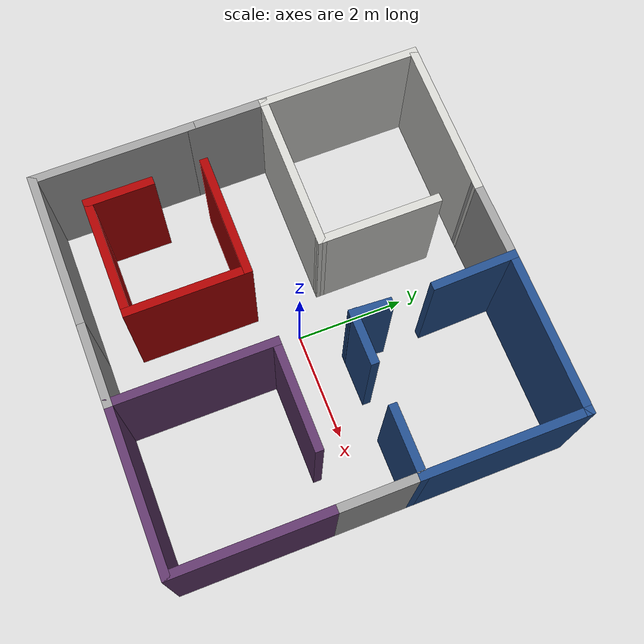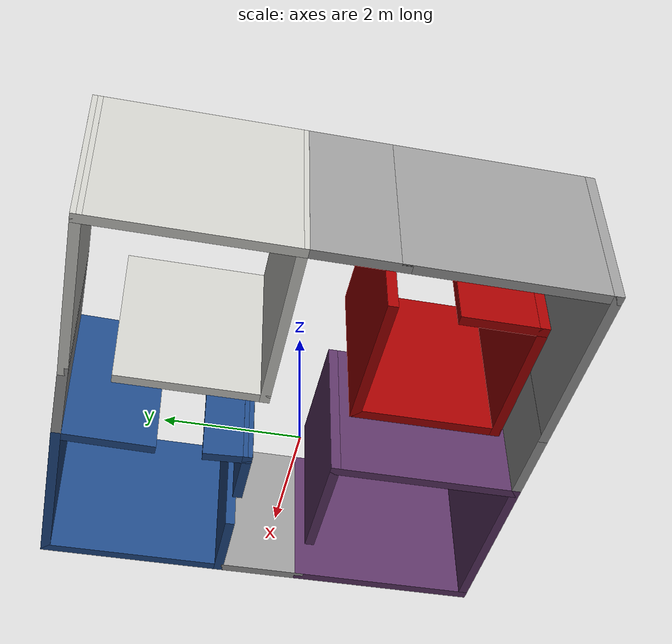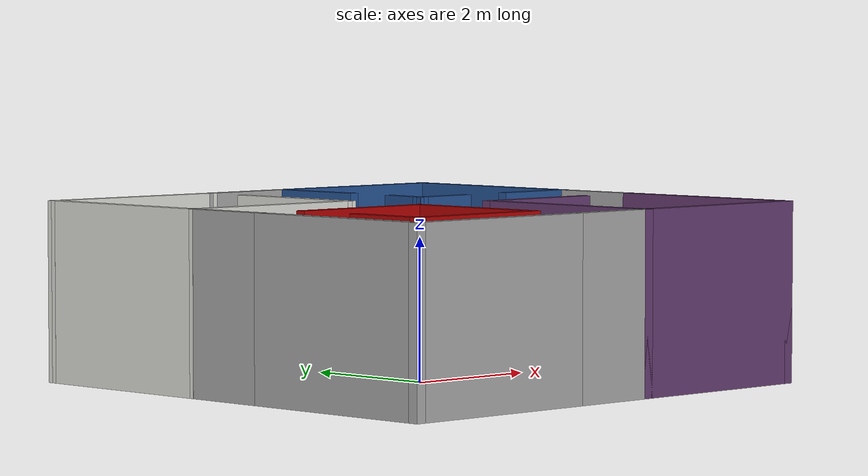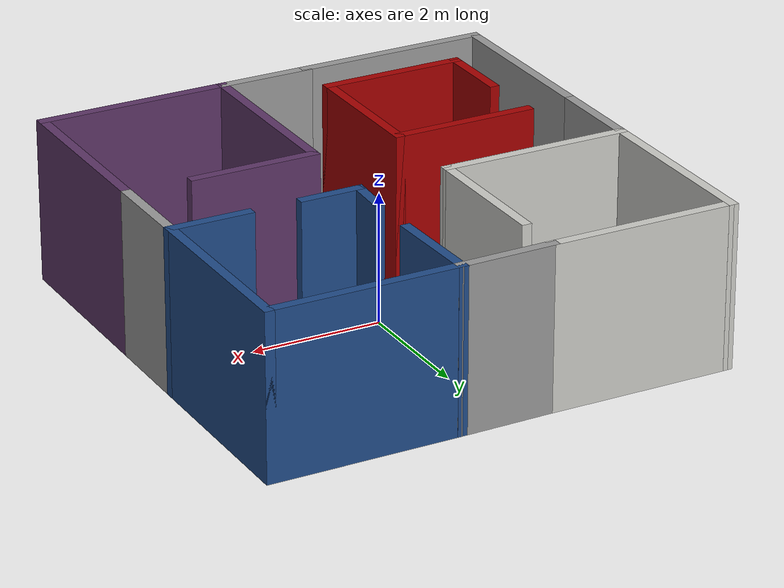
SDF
<?xml version='1.0'?>
<sdf version='1.7'>
  <model name='apartment'>
    <link name='Wall_20'>
      <pose>-3.52477 2.09918 0 0 0 -1.5708</pose>
      <self_collide>0</self_collide>
      <enable_wind>0</enable_wind>
      <kinematic>0</kinematic>
      <visual name='Wall_20_Visual'>
        <pose>0 0 1.25 0 -0 0</pose>
        <geometry>
          <box>
            <size>3 0.15 2.5</size>
          </box>
        </geometry>
        <material>
          <script>
            <uri>file://media/materials/scripts/gazebo.material</uri>
            <name>Gazebo/CeilingTiled</name>
          </script>
          <ambient>0.435294 0.796078 0.67451 1</ambient>
          <shader type='pixel'/>
        </material>
        <meta>
          <layer>0</layer>
        </meta>
        <transparency>0</transparency>
        <cast_shadows>1</cast_shadows>
      </visual>
      <collision name='Wall_20_Collision'>
        <laser_retro>0</laser_retro>
        <max_contacts>10</max_contacts>
        <pose>0 0 1.25 0 -0 0</pose>
        <geometry>
          <box>
            <size>3 0.15 2.5</size>
          </box>
        </geometry>
        <surface>
          <friction>
            <ode>
              <mu>1</mu>
              <mu2>1</mu2>
              <fdir1>0 0 0</fdir1>
              <slip1>0</slip1>
              <slip2>0</slip2>
            </ode>
            <torsional>
              <coefficient>1</coefficient>
              <patch_radius>0</patch_radius>
              <surface_radius>0</surface_radius>
              <use_patch_radius>1</use_patch_radius>
              <ode>
                <slip>0</slip>
              </ode>
            </torsional>
          </friction>
          <bounce>
            <restitution_coefficient>0</restitution_coefficient>
            <threshold>1e+06</threshold>
          </bounce>
          <contact>
            <collide_without_contact>0</collide_without_contact>
            <collide_without_contact_bitmask>1</collide_without_contact_bitmask>
            <collide_bitmask>1</collide_bitmask>
            <ode>
              <soft_cfm>0</soft_cfm>
              <soft_erp>0.2</soft_erp>
              <kp>1e+13</kp>
              <kd>1</kd>
              <max_vel>0.01</max_vel>
              <min_depth>0</min_depth>
            </ode>
            <bullet>
              <split_impulse>1</split_impulse>
              <split_impulse_penetration_threshold>-0.01</split_impulse_penetration_threshold>
              <soft_cfm>0</soft_cfm>
              <soft_erp>0.2</soft_erp>
              <kp>1e+13</kp>
              <kd>1</kd>
            </bullet>
          </contact>
        </surface>
      </collision>
    </link>
    <link name='Wall_21'>
      <pose>-2.126 0.665439 0 0 0 -0.006252</pose>
      <self_collide>0</self_collide>
      <enable_wind>0</enable_wind>
      <kinematic>0</kinematic>
      <visual name='Wall_21_Visual'>
        <pose>0 0 1.25 0 -0 0</pose>
        <geometry>
          <box>
            <size>2.94758 0.15 2.5</size>
          </box>
        </geometry>
        <material>
          <script>
            <uri>file://media/materials/scripts/gazebo.material</uri>
            <name>Gazebo/CeilingTiled</name>
          </script>
          <ambient>0.435294 0.796078 0.67451 1</ambient>
          <shader type='pixel'/>
        </material>
        <meta>
          <layer>0</layer>
        </meta>
        <transparency>0</transparency>
        <cast_shadows>1</cast_shadows>
      </visual>
      <collision name='Wall_21_Collision'>
        <laser_retro>0</laser_retro>
        <max_contacts>10</max_contacts>
        <pose>0 0 1.25 0 -0 0</pose>
        <geometry>
          <box>
            <size>2.94758 0.15 2.5</size>
          </box>
        </geometry>
        <surface>
          <friction>
            <ode>
              <mu>1</mu>
              <mu2>1</mu2>
              <fdir1>0 0 0</fdir1>
              <slip1>0</slip1>
              <slip2>0</slip2>
            </ode>
            <torsional>
              <coefficient>1</coefficient>
              <patch_radius>0</patch_radius>
              <surface_radius>0</surface_radius>
              <use_patch_radius>1</use_patch_radius>
              <ode>
                <slip>0</slip>
              </ode>
            </torsional>
          </friction>
          <bounce>
            <restitution_coefficient>0</restitution_coefficient>
            <threshold>1e+06</threshold>
          </bounce>
          <contact>
            <collide_without_contact>0</collide_without_contact>
            <collide_without_contact_bitmask>1</collide_without_contact_bitmask>
            <collide_bitmask>1</collide_bitmask>
            <ode>
              <soft_cfm>0</soft_cfm>
              <soft_erp>0.2</soft_erp>
              <kp>1e+13</kp>
              <kd>1</kd>
              <max_vel>0.01</max_vel>
              <min_depth>0</min_depth>
            </ode>
            <bullet>
              <split_impulse>1</split_impulse>
              <split_impulse_penetration_threshold>-0.01</split_impulse_penetration_threshold>
              <soft_cfm>0</soft_cfm>
              <soft_erp>0.2</soft_erp>
              <kp>1e+13</kp>
              <kd>1</kd>
            </bullet>
          </contact>
        </surface>
      </collision>
    </link>
    <link name='Wall_23'>
      <pose>-2.126 3.51544 0 0 -0 3.13534</pose>
      <self_collide>0</self_collide>
      <enable_wind>0</enable_wind>
      <kinematic>0</kinematic>
      <visual name='Wall_23_Visual'>
        <pose>0 0 1.25 0 -0 0</pose>
        <geometry>
          <box>
            <size>2.94758 0.15 2.5</size>
          </box>
        </geometry>
        <material>
          <script>
            <uri>file://media/materials/scripts/gazebo.material</uri>
            <name>Gazebo/CeilingTiled</name>
          </script>
          <ambient>0.435294 0.796078 0.67451 1</ambient>
          <shader type='pixel'/>
        </material>
        <meta>
          <layer>0</layer>
        </meta>
        <transparency>0</transparency>
        <cast_shadows>1</cast_shadows>
      </visual>
      <collision name='Wall_23_Collision'>
        <laser_retro>0</laser_retro>
        <max_contacts>10</max_contacts>
        <pose>0 0 1.25 0 -0 0</pose>
        <geometry>
          <box>
            <size>2.94758 0.15 2.5</size>
          </box>
        </geometry>
        <surface>
          <friction>
            <ode>
              <mu>1</mu>
              <mu2>1</mu2>
              <fdir1>0 0 0</fdir1>
              <slip1>0</slip1>
              <slip2>0</slip2>
            </ode>
            <torsional>
              <coefficient>1</coefficient>
              <patch_radius>0</patch_radius>
              <surface_radius>0</surface_radius>
              <use_patch_radius>1</use_patch_radius>
              <ode>
                <slip>0</slip>
              </ode>
            </torsional>
          </friction>
          <bounce>
            <restitution_coefficient>0</restitution_coefficient>
            <threshold>1e+06</threshold>
          </bounce>
          <contact>
            <collide_without_contact>0</collide_without_contact>
            <collide_without_contact_bitmask>1</collide_without_contact_bitmask>
            <collide_bitmask>1</collide_bitmask>
            <ode>
              <soft_cfm>0</soft_cfm>
              <soft_erp>0.2</soft_erp>
              <kp>1e+13</kp>
              <kd>1</kd>
              <max_vel>0.01</max_vel>
              <min_depth>0</min_depth>
            </ode>
            <bullet>
              <split_impulse>1</split_impulse>
              <split_impulse_penetration_threshold>-0.01</split_impulse_penetration_threshold>
              <soft_cfm>0</soft_cfm>
              <soft_erp>0.2</soft_erp>
              <kp>1e+13</kp>
              <kd>1</kd>
            </bullet>
          </contact>
        </surface>
      </collision>
    </link>
    <link name='Wall_25'>
      <pose>-3.52477 -0.000816 0 0 0 -1.5708</pose>
      <self_collide>0</self_collide>
      <enable_wind>0</enable_wind>
      <kinematic>0</kinematic>
      <visual name='Wall_25_Visual'>
        <pose>0 0 1.25 0 -0 0</pose>
        <geometry>
          <box>
            <size>1.5 0.15 2.5</size>
          </box>
        </geometry>
        <material>
          <script>
            <uri>file://media/materials/scripts/gazebo.material</uri>
            <name>Gazebo/Grey</name>
          </script>
          <ambient>0.729412 0.741176 0.713726 1</ambient>
          <shader type='pixel'/>
        </material>
        <meta>
          <layer>0</layer>
        </meta>
        <transparency>0</transparency>
        <cast_shadows>1</cast_shadows>
      </visual>
      <collision name='Wall_25_Collision'>
        <laser_retro>0</laser_retro>
        <max_contacts>10</max_contacts>
        <pose>0 0 1.25 0 -0 0</pose>
        <geometry>
          <box>
            <size>1.5 0.15 2.5</size>
          </box>
        </geometry>
        <surface>
          <friction>
            <ode>
              <mu>1</mu>
              <mu2>1</mu2>
              <fdir1>0 0 0</fdir1>
              <slip1>0</slip1>
              <slip2>0</slip2>
            </ode>
            <torsional>
              <coefficient>1</coefficient>
              <patch_radius>0</patch_radius>
              <surface_radius>0</surface_radius>
              <use_patch_radius>1</use_patch_radius>
              <ode>
                <slip>0</slip>
              </ode>
            </torsional>
          </friction>
          <bounce>
            <restitution_coefficient>0</restitution_coefficient>
            <threshold>1e+06</threshold>
          </bounce>
          <contact>
            <collide_without_contact>0</collide_without_contact>
            <collide_without_contact_bitmask>1</collide_without_contact_bitmask>
            <collide_bitmask>1</collide_bitmask>
            <ode>
              <soft_cfm>0</soft_cfm>
              <soft_erp>0.2</soft_erp>
              <kp>1e+13</kp>
              <kd>1</kd>
              <max_vel>0.01</max_vel>
              <min_depth>0</min_depth>
            </ode>
            <bullet>
              <split_impulse>1</split_impulse>
              <split_impulse_penetration_threshold>-0.01</split_impulse_penetration_threshold>
              <soft_cfm>0</soft_cfm>
              <soft_erp>0.2</soft_erp>
              <kp>1e+13</kp>
              <kd>1</kd>
            </bullet>
          </contact>
        </surface>
      </collision>
    </link>
    <link name='Wall_29'>
      <pose>-2.09977 -3.52582 0 0 -0 3.14159</pose>
      <self_collide>0</self_collide>
      <enable_wind>0</enable_wind>
      <kinematic>0</kinematic>
      <visual name='Wall_29_Visual'>
        <pose>0 0 1.25 0 -0 0</pose>
        <geometry>
          <box>
            <size>3 0.15 2.5</size>
          </box>
        </geometry>
        <material>
          <script>
            <uri>file://media/materials/scripts/gazebo.material</uri>
            <name>Gazebo/Grey</name>
          </script>
          <ambient>0.729412 0.741176 0.713726 1</ambient>
          <shader type='pixel'/>
        </material>
        <meta>
          <layer>0</layer>
        </meta>
        <transparency>0</transparency>
        <cast_shadows>1</cast_shadows>
      </visual>
      <collision name='Wall_29_Collision'>
        <laser_retro>0</laser_retro>
        <max_contacts>10</max_contacts>
        <pose>0 0 1.25 0 -0 0</pose>
        <geometry>
          <box>
            <size>3 0.15 2.5</size>
          </box>
        </geometry>
        <surface>
          <friction>
            <ode>
              <mu>1</mu>
              <mu2>1</mu2>
              <fdir1>0 0 0</fdir1>
              <slip1>0</slip1>
              <slip2>0</slip2>
            </ode>
            <torsional>
              <coefficient>1</coefficient>
              <patch_radius>0</patch_radius>
              <surface_radius>0</surface_radius>
              <use_patch_radius>1</use_patch_radius>
              <ode>
                <slip>0</slip>
              </ode>
            </torsional>
          </friction>
          <bounce>
            <restitution_coefficient>0</restitution_coefficient>
            <threshold>1e+06</threshold>
          </bounce>
          <contact>
            <collide_without_contact>0</collide_without_contact>
            <collide_without_contact_bitmask>1</collide_without_contact_bitmask>
            <collide_bitmask>1</collide_bitmask>
            <ode>
              <soft_cfm>0</soft_cfm>
              <soft_erp>0.2</soft_erp>
              <kp>1e+13</kp>
              <kd>1</kd>
              <max_vel>0.01</max_vel>
              <min_depth>0</min_depth>
            </ode>
            <bullet>
              <split_impulse>1</split_impulse>
              <split_impulse_penetration_threshold>-0.01</split_impulse_penetration_threshold>
              <soft_cfm>0</soft_cfm>
              <soft_erp>0.2</soft_erp>
              <kp>1e+13</kp>
              <kd>1</kd>
            </bullet>
          </contact>
        </surface>
      </collision>
    </link>
    <link name='Wall_30'>
      <pose>-3.52477 -2.10082 0 0 -0 1.5708</pose>
      <self_collide>0</self_collide>
      <enable_wind>0</enable_wind>
      <kinematic>0</kinematic>
      <visual name='Wall_30_Visual'>
        <pose>0 0 1.25 0 -0 0</pose>
        <geometry>
          <box>
            <size>3 0.15 2.5</size>
          </box>
        </geometry>
        <material>
          <script>
            <uri>file://media/materials/scripts/gazebo.material</uri>
            <name>Gazebo/Grey</name>
          </script>
          <ambient>0.729412 0.741176 0.713726 1</ambient>
          <shader type='pixel'/>
        </material>
        <meta>
          <layer>0</layer>
        </meta>
        <transparency>0</transparency>
        <cast_shadows>1</cast_shadows>
      </visual>
      <collision name='Wall_30_Collision'>
        <laser_retro>0</laser_retro>
        <max_contacts>10</max_contacts>
        <pose>0 0 1.25 0 -0 0</pose>
        <geometry>
          <box>
            <size>3 0.15 2.5</size>
          </box>
        </geometry>
        <surface>
          <friction>
            <ode>
              <mu>1</mu>
              <mu2>1</mu2>
              <fdir1>0 0 0</fdir1>
              <slip1>0</slip1>
              <slip2>0</slip2>
            </ode>
            <torsional>
              <coefficient>1</coefficient>
              <patch_radius>0</patch_radius>
              <surface_radius>0</surface_radius>
              <use_patch_radius>1</use_patch_radius>
              <ode>
                <slip>0</slip>
              </ode>
            </torsional>
          </friction>
          <bounce>
            <restitution_coefficient>0</restitution_coefficient>
            <threshold>1e+06</threshold>
          </bounce>
          <contact>
            <collide_without_contact>0</collide_without_contact>
            <collide_without_contact_bitmask>1</collide_without_contact_bitmask>
            <collide_bitmask>1</collide_bitmask>
            <ode>
              <soft_cfm>0</soft_cfm>
              <soft_erp>0.2</soft_erp>
              <kp>1e+13</kp>
              <kd>1</kd>
              <max_vel>0.01</max_vel>
              <min_depth>0</min_depth>
            </ode>
            <bullet>
              <split_impulse>1</split_impulse>
              <split_impulse_penetration_threshold>-0.01</split_impulse_penetration_threshold>
              <soft_cfm>0</soft_cfm>
              <soft_erp>0.2</soft_erp>
              <kp>1e+13</kp>
              <kd>1</kd>
            </bullet>
          </contact>
        </surface>
      </collision>
    </link>
    <link name='Wall_32'>
      <pose>-0.026002 3.51544 0 0 -0 0.01247</pose>
      <self_collide>0</self_collide>
      <enable_wind>0</enable_wind>
      <kinematic>0</kinematic>
      <visual name='Wall_32_Visual'>
        <pose>0 0 1.25 0 -0 0</pose>
        <geometry>
          <box>
            <size>1.55258 0.15 2.5</size>
          </box>
        </geometry>
        <material>
          <script>
            <uri>file://media/materials/scripts/gazebo.material</uri>
            <name>Gazebo/Grey</name>
          </script>
          <ambient>0.729412 0.741176 0.713726 1</ambient>
          <shader type='pixel'/>
        </material>
        <meta>
          <layer>0</layer>
        </meta>
        <transparency>0</transparency>
        <cast_shadows>1</cast_shadows>
      </visual>
      <collision name='Wall_32_Collision'>
        <laser_retro>0</laser_retro>
        <max_contacts>10</max_contacts>
        <pose>0 0 1.25 0 -0 0</pose>
        <geometry>
          <box>
            <size>1.55258 0.15 2.5</size>
          </box>
        </geometry>
        <surface>
          <friction>
            <ode>
              <mu>1</mu>
              <mu2>1</mu2>
              <fdir1>0 0 0</fdir1>
              <slip1>0</slip1>
              <slip2>0</slip2>
            </ode>
            <torsional>
              <coefficient>1</coefficient>
              <patch_radius>0</patch_radius>
              <surface_radius>0</surface_radius>
              <use_patch_radius>1</use_patch_radius>
              <ode>
                <slip>0</slip>
              </ode>
            </torsional>
          </friction>
          <bounce>
            <restitution_coefficient>0</restitution_coefficient>
            <threshold>1e+06</threshold>
          </bounce>
          <contact>
            <collide_without_contact>0</collide_without_contact>
            <collide_without_contact_bitmask>1</collide_without_contact_bitmask>
            <collide_bitmask>1</collide_bitmask>
            <ode>
              <soft_cfm>0</soft_cfm>
              <soft_erp>0.2</soft_erp>
              <kp>1e+13</kp>
              <kd>1</kd>
              <max_vel>0.01</max_vel>
              <min_depth>0</min_depth>
            </ode>
            <bullet>
              <split_impulse>1</split_impulse>
              <split_impulse_penetration_threshold>-0.01</split_impulse_penetration_threshold>
              <soft_cfm>0</soft_cfm>
              <soft_erp>0.2</soft_erp>
              <kp>1e+13</kp>
              <kd>1</kd>
            </bullet>
          </contact>
        </surface>
      </collision>
    </link>
    <link name='Wall_33'>
      <pose>2.10023 3.52418 0 0 -0 0</pose>
      <self_collide>0</self_collide>
      <enable_wind>0</enable_wind>
      <kinematic>0</kinematic>
      <visual name='Wall_33_Visual'>
        <pose>0 0 1.25 0 -0 0</pose>
        <geometry>
          <box>
            <size>3 0.15 2.5</size>
          </box>
        </geometry>
        <material>
          <script>
            <uri>file://media/materials/scripts/gazebo.material</uri>
            <name>Gazebo/Grey</name>
          </script>
          <ambient>0.12549 0.290196 0.529412 1</ambient>
          <shader type='pixel'/>
        </material>
        <meta>
          <layer>0</layer>
        </meta>
        <transparency>0</transparency>
        <cast_shadows>1</cast_shadows>
      </visual>
      <collision name='Wall_33_Collision'>
        <laser_retro>0</laser_retro>
        <max_contacts>10</max_contacts>
        <pose>0 0 1.25 0 -0 0</pose>
        <geometry>
          <box>
            <size>3 0.15 2.5</size>
          </box>
        </geometry>
        <surface>
          <friction>
            <ode>
              <mu>1</mu>
              <mu2>1</mu2>
              <fdir1>0 0 0</fdir1>
              <slip1>0</slip1>
              <slip2>0</slip2>
            </ode>
            <torsional>
              <coefficient>1</coefficient>
              <patch_radius>0</patch_radius>
              <surface_radius>0</surface_radius>
              <use_patch_radius>1</use_patch_radius>
              <ode>
                <slip>0</slip>
              </ode>
            </torsional>
          </friction>
          <bounce>
            <restitution_coefficient>0</restitution_coefficient>
            <threshold>1e+06</threshold>
          </bounce>
          <contact>
            <collide_without_contact>0</collide_without_contact>
            <collide_without_contact_bitmask>1</collide_without_contact_bitmask>
            <collide_bitmask>1</collide_bitmask>
            <ode>
              <soft_cfm>0</soft_cfm>
              <soft_erp>0.2</soft_erp>
              <kp>1e+13</kp>
              <kd>1</kd>
              <max_vel>0.01</max_vel>
              <min_depth>0</min_depth>
            </ode>
            <bullet>
              <split_impulse>1</split_impulse>
              <split_impulse_penetration_threshold>-0.01</split_impulse_penetration_threshold>
              <soft_cfm>0</soft_cfm>
              <soft_erp>0.2</soft_erp>
              <kp>1e+13</kp>
              <kd>1</kd>
            </bullet>
          </contact>
        </surface>
      </collision>
    </link>
    <link name='Wall_34'>
      <pose>3.52523 2.09918 0 0 0 -1.5708</pose>
      <self_collide>0</self_collide>
      <enable_wind>0</enable_wind>
      <kinematic>0</kinematic>
      <visual name='Wall_34_Visual'>
        <pose>0 0 1.25 0 -0 0</pose>
        <geometry>
          <box>
            <size>3 0.15 2.5</size>
          </box>
        </geometry>
        <material>
          <script>
            <uri>file://media/materials/scripts/gazebo.material</uri>
            <name>Gazebo/Grey</name>
          </script>
          <ambient>0.12549 0.290196 0.529412 1</ambient>
          <shader type='pixel'/>
        </material>
        <meta>
          <layer>0</layer>
        </meta>
        <transparency>0</transparency>
        <cast_shadows>1</cast_shadows>
      </visual>
      <collision name='Wall_34_Collision'>
        <laser_retro>0</laser_retro>
        <max_contacts>10</max_contacts>
        <pose>0 0 1.25 0 -0 0</pose>
        <geometry>
          <box>
            <size>3 0.15 2.5</size>
          </box>
        </geometry>
        <surface>
          <friction>
            <ode>
              <mu>1</mu>
              <mu2>1</mu2>
              <fdir1>0 0 0</fdir1>
              <slip1>0</slip1>
              <slip2>0</slip2>
            </ode>
            <torsional>
              <coefficient>1</coefficient>
              <patch_radius>0</patch_radius>
              <surface_radius>0</surface_radius>
              <use_patch_radius>1</use_patch_radius>
              <ode>
                <slip>0</slip>
              </ode>
            </torsional>
          </friction>
          <bounce>
            <restitution_coefficient>0</restitution_coefficient>
            <threshold>1e+06</threshold>
          </bounce>
          <contact>
            <collide_without_contact>0</collide_without_contact>
            <collide_without_contact_bitmask>1</collide_without_contact_bitmask>
            <collide_bitmask>1</collide_bitmask>
            <ode>
              <soft_cfm>0</soft_cfm>
              <soft_erp>0.2</soft_erp>
              <kp>1e+13</kp>
              <kd>1</kd>
              <max_vel>0.01</max_vel>
              <min_depth>0</min_depth>
            </ode>
            <bullet>
              <split_impulse>1</split_impulse>
              <split_impulse_penetration_threshold>-0.01</split_impulse_penetration_threshold>
              <soft_cfm>0</soft_cfm>
              <soft_erp>0.2</soft_erp>
              <kp>1e+13</kp>
              <kd>1</kd>
            </bullet>
          </contact>
        </surface>
      </collision>
    </link>
    <link name='Wall_38'>
      <pose>0.000234 -3.52582 0 0 -0 0</pose>
      <self_collide>0</self_collide>
      <enable_wind>0</enable_wind>
      <kinematic>0</kinematic>
      <visual name='Wall_38_Visual'>
        <pose>0 0 1.25 0 -0 0</pose>
        <geometry>
          <box>
            <size>1.5 0.15 2.5</size>
          </box>
        </geometry>
        <material>
          <script>
            <uri>file://media/materials/scripts/gazebo.material</uri>
            <name>Gazebo/Grey</name>
          </script>
          <ambient>0.729412 0.741176 0.713726 1</ambient>
          <shader type='pixel'/>
        </material>
        <meta>
          <layer>0</layer>
        </meta>
        <transparency>0</transparency>
        <cast_shadows>1</cast_shadows>
      </visual>
      <collision name='Wall_38_Collision'>
        <laser_retro>0</laser_retro>
        <max_contacts>10</max_contacts>
        <pose>0 0 1.25 0 -0 0</pose>
        <geometry>
          <box>
            <size>1.5 0.15 2.5</size>
          </box>
        </geometry>
        <surface>
          <friction>
            <ode>
              <mu>1</mu>
              <mu2>1</mu2>
              <fdir1>0 0 0</fdir1>
              <slip1>0</slip1>
              <slip2>0</slip2>
            </ode>
            <torsional>
              <coefficient>1</coefficient>
              <patch_radius>0</patch_radius>
              <surface_radius>0</surface_radius>
              <use_patch_radius>1</use_patch_radius>
              <ode>
                <slip>0</slip>
              </ode>
            </torsional>
          </friction>
          <bounce>
            <restitution_coefficient>0</restitution_coefficient>
            <threshold>1e+06</threshold>
          </bounce>
          <contact>
            <collide_without_contact>0</collide_without_contact>
            <collide_without_contact_bitmask>1</collide_without_contact_bitmask>
            <collide_bitmask>1</collide_bitmask>
            <ode>
              <soft_cfm>0</soft_cfm>
              <soft_erp>0.2</soft_erp>
              <kp>1e+13</kp>
              <kd>1</kd>
              <max_vel>0.01</max_vel>
              <min_depth>0</min_depth>
            </ode>
            <bullet>
              <split_impulse>1</split_impulse>
              <split_impulse_penetration_threshold>-0.01</split_impulse_penetration_threshold>
              <soft_cfm>0</soft_cfm>
              <soft_erp>0.2</soft_erp>
              <kp>1e+13</kp>
              <kd>1</kd>
            </bullet>
          </contact>
        </surface>
      </collision>
    </link>
    <link name='Wall_39'>
      <pose>2.10023 -3.52582 0 0 -0 0</pose>
      <self_collide>0</self_collide>
      <enable_wind>0</enable_wind>
      <kinematic>0</kinematic>
      <visual name='Wall_39_Visual'>
        <pose>0 0 1.25 0 -0 0</pose>
        <geometry>
          <box>
            <size>3 0.15 2.5</size>
          </box>
        </geometry>
        <material>
          <script>
            <uri>file://media/materials/scripts/gazebo.material</uri>
            <name>Gazebo/Grey</name>
          </script>
          <ambient>0.360784 0.207843 0.4 1</ambient>
          <shader type='pixel'/>
        </material>
        <meta>
          <layer>0</layer>
        </meta>
        <transparency>0</transparency>
        <cast_shadows>1</cast_shadows>
      </visual>
      <collision name='Wall_39_Collision'>
        <laser_retro>0</laser_retro>
        <max_contacts>10</max_contacts>
        <pose>0 0 1.25 0 -0 0</pose>
        <geometry>
          <box>
            <size>3 0.15 2.5</size>
          </box>
        </geometry>
        <surface>
          <friction>
            <ode>
              <mu>1</mu>
              <mu2>1</mu2>
              <fdir1>0 0 0</fdir1>
              <slip1>0</slip1>
              <slip2>0</slip2>
            </ode>
            <torsional>
              <coefficient>1</coefficient>
              <patch_radius>0</patch_radius>
              <surface_radius>0</surface_radius>
              <use_patch_radius>1</use_patch_radius>
              <ode>
                <slip>0</slip>
              </ode>
            </torsional>
          </friction>
          <bounce>
            <restitution_coefficient>0</restitution_coefficient>
            <threshold>1e+06</threshold>
          </bounce>
          <contact>
            <collide_without_contact>0</collide_without_contact>
            <collide_without_contact_bitmask>1</collide_without_contact_bitmask>
            <collide_bitmask>1</collide_bitmask>
            <ode>
              <soft_cfm>0</soft_cfm>
              <soft_erp>0.2</soft_erp>
              <kp>1e+13</kp>
              <kd>1</kd>
              <max_vel>0.01</max_vel>
              <min_depth>0</min_depth>
            </ode>
            <bullet>
              <split_impulse>1</split_impulse>
              <split_impulse_penetration_threshold>-0.01</split_impulse_penetration_threshold>
              <soft_cfm>0</soft_cfm>
              <soft_erp>0.2</soft_erp>
              <kp>1e+13</kp>
              <kd>1</kd>
            </bullet>
          </contact>
        </surface>
      </collision>
    </link>
    <link name='Wall_40'>
      <pose>3.52523 -2.10082 0 0 -0 1.5708</pose>
      <self_collide>0</self_collide>
      <enable_wind>0</enable_wind>
      <kinematic>0</kinematic>
      <visual name='Wall_40_Visual'>
        <pose>0 0 1.25 0 -0 0</pose>
        <geometry>
          <box>
            <size>3 0.15 2.5</size>
          </box>
        </geometry>
        <material>
          <script>
            <uri>file://media/materials/scripts/gazebo.material</uri>
            <name>Gazebo/Grey</name>
          </script>
          <ambient>0.360784 0.207843 0.4 1</ambient>
          <shader type='pixel'/>
        </material>
        <meta>
          <layer>0</layer>
        </meta>
        <transparency>0</transparency>
        <cast_shadows>1</cast_shadows>
      </visual>
      <collision name='Wall_40_Collision'>
        <laser_retro>0</laser_retro>
        <max_contacts>10</max_contacts>
        <pose>0 0 1.25 0 -0 0</pose>
        <geometry>
          <box>
            <size>3 0.15 2.5</size>
          </box>
        </geometry>
        <surface>
          <friction>
            <ode>
              <mu>1</mu>
              <mu2>1</mu2>
              <fdir1>0 0 0</fdir1>
              <slip1>0</slip1>
              <slip2>0</slip2>
            </ode>
            <torsional>
              <coefficient>1</coefficient>
              <patch_radius>0</patch_radius>
              <surface_radius>0</surface_radius>
              <use_patch_radius>1</use_patch_radius>
              <ode>
                <slip>0</slip>
              </ode>
            </torsional>
          </friction>
          <bounce>
            <restitution_coefficient>0</restitution_coefficient>
            <threshold>1e+06</threshold>
          </bounce>
          <contact>
            <collide_without_contact>0</collide_without_contact>
            <collide_without_contact_bitmask>1</collide_without_contact_bitmask>
            <collide_bitmask>1</collide_bitmask>
            <ode>
              <soft_cfm>0</soft_cfm>
              <soft_erp>0.2</soft_erp>
              <kp>1e+13</kp>
              <kd>1</kd>
              <max_vel>0.01</max_vel>
              <min_depth>0</min_depth>
            </ode>
            <bullet>
              <split_impulse>1</split_impulse>
              <split_impulse_penetration_threshold>-0.01</split_impulse_penetration_threshold>
              <soft_cfm>0</soft_cfm>
              <soft_erp>0.2</soft_erp>
              <kp>1e+13</kp>
              <kd>1</kd>
            </bullet>
          </contact>
        </surface>
      </collision>
    </link>
    <link name='Wall_42'>
      <pose>0.675234 -2.10082 0 0 0 -1.5708</pose>
      <self_collide>0</self_collide>
      <enable_wind>0</enable_wind>
      <kinematic>0</kinematic>
      <visual name='Wall_42_Visual'>
        <pose>0 0 1.25 0 -0 0</pose>
        <geometry>
          <box>
            <size>3 0.15 2.5</size>
          </box>
        </geometry>
        <material>
          <script>
            <uri>file://media/materials/scripts/gazebo.material</uri>
            <name>Gazebo/Grey</name>
          </script>
          <ambient>0.360784 0.207843 0.4 1</ambient>
          <shader type='pixel'/>
        </material>
        <meta>
          <layer>0</layer>
        </meta>
        <transparency>0</transparency>
        <cast_shadows>1</cast_shadows>
      </visual>
      <collision name='Wall_42_Collision'>
        <laser_retro>0</laser_retro>
        <max_contacts>10</max_contacts>
        <pose>0 0 1.25 0 -0 0</pose>
        <geometry>
          <box>
            <size>3 0.15 2.5</size>
          </box>
        </geometry>
        <surface>
          <friction>
            <ode>
              <mu>1</mu>
              <mu2>1</mu2>
              <fdir1>0 0 0</fdir1>
              <slip1>0</slip1>
              <slip2>0</slip2>
            </ode>
            <torsional>
              <coefficient>1</coefficient>
              <patch_radius>0</patch_radius>
              <surface_radius>0</surface_radius>
              <use_patch_radius>1</use_patch_radius>
              <ode>
                <slip>0</slip>
              </ode>
            </torsional>
          </friction>
          <bounce>
            <restitution_coefficient>0</restitution_coefficient>
            <threshold>1e+06</threshold>
          </bounce>
          <contact>
            <collide_without_contact>0</collide_without_contact>
            <collide_without_contact_bitmask>1</collide_without_contact_bitmask>
            <collide_bitmask>1</collide_bitmask>
            <ode>
              <soft_cfm>0</soft_cfm>
              <soft_erp>0.2</soft_erp>
              <kp>1e+13</kp>
              <kd>1</kd>
              <max_vel>0.01</max_vel>
              <min_depth>0</min_depth>
            </ode>
            <bullet>
              <split_impulse>1</split_impulse>
              <split_impulse_penetration_threshold>-0.01</split_impulse_penetration_threshold>
              <soft_cfm>0</soft_cfm>
              <soft_erp>0.2</soft_erp>
              <kp>1e+13</kp>
              <kd>1</kd>
            </bullet>
          </contact>
        </surface>
      </collision>
    </link>
    <link name='Wall_44'>
      <pose>3.52523 -0.000816 0 0 -0 1.5708</pose>
      <self_collide>0</self_collide>
      <enable_wind>0</enable_wind>
      <kinematic>0</kinematic>
      <visual name='Wall_44_Visual'>
        <pose>0 0 1.25 0 -0 0</pose>
        <geometry>
          <box>
            <size>1.5 0.15 2.5</size>
          </box>
        </geometry>
        <material>
          <script>
            <uri>file://media/materials/scripts/gazebo.material</uri>
            <name>Gazebo/Grey</name>
          </script>
          <ambient>0.729412 0.741176 0.713726 1</ambient>
          <shader type='pixel'/>
        </material>
        <meta>
          <layer>0</layer>
        </meta>
        <transparency>0</transparency>
        <cast_shadows>1</cast_shadows>
      </visual>
      <collision name='Wall_44_Collision'>
        <laser_retro>0</laser_retro>
        <max_contacts>10</max_contacts>
        <pose>0 0 1.25 0 -0 0</pose>
        <geometry>
          <box>
            <size>1.5 0.15 2.5</size>
          </box>
        </geometry>
        <surface>
          <friction>
            <ode>
              <mu>1</mu>
              <mu2>1</mu2>
              <fdir1>0 0 0</fdir1>
              <slip1>0</slip1>
              <slip2>0</slip2>
            </ode>
            <torsional>
              <coefficient>1</coefficient>
              <patch_radius>0</patch_radius>
              <surface_radius>0</surface_radius>
              <use_patch_radius>1</use_patch_radius>
              <ode>
                <slip>0</slip>
              </ode>
            </torsional>
          </friction>
          <bounce>
            <restitution_coefficient>0</restitution_coefficient>
            <threshold>1e+06</threshold>
          </bounce>
          <contact>
            <collide_without_contact>0</collide_without_contact>
            <collide_without_contact_bitmask>1</collide_without_contact_bitmask>
            <collide_bitmask>1</collide_bitmask>
            <ode>
              <soft_cfm>0</soft_cfm>
              <soft_erp>0.2</soft_erp>
              <kp>1e+13</kp>
              <kd>1</kd>
              <max_vel>0.01</max_vel>
              <min_depth>0</min_depth>
            </ode>
            <bullet>
              <split_impulse>1</split_impulse>
              <split_impulse_penetration_threshold>-0.01</split_impulse_penetration_threshold>
              <soft_cfm>0</soft_cfm>
              <soft_erp>0.2</soft_erp>
              <kp>1e+13</kp>
              <kd>1</kd>
            </bullet>
          </contact>
        </surface>
      </collision>
    </link>
    <link name='Wall_46'>
      <pose>1.60023 -0.675816 0 0 -0 0</pose>
      <self_collide>0</self_collide>
      <enable_wind>0</enable_wind>
      <kinematic>0</kinematic>
      <visual name='Wall_46_Visual'>
        <pose>0 0 1.25 0 -0 0</pose>
        <geometry>
          <box>
            <size>2 0.15 2.5</size>
          </box>
        </geometry>
        <material>
          <script>
            <uri>file://media/materials/scripts/gazebo.material</uri>
            <name>Gazebo/Grey</name>
          </script>
          <ambient>0.360784 0.207843 0.4 1</ambient>
          <shader type='pixel'/>
        </material>
        <meta>
          <layer>0</layer>
        </meta>
        <transparency>0</transparency>
        <cast_shadows>1</cast_shadows>
      </visual>
      <collision name='Wall_46_Collision'>
        <laser_retro>0</laser_retro>
        <max_contacts>10</max_contacts>
        <pose>0 0 1.25 0 -0 0</pose>
        <geometry>
          <box>
            <size>2 0.15 2.5</size>
          </box>
        </geometry>
        <surface>
          <friction>
            <ode>
              <mu>1</mu>
              <mu2>1</mu2>
              <fdir1>0 0 0</fdir1>
              <slip1>0</slip1>
              <slip2>0</slip2>
            </ode>
            <torsional>
              <coefficient>1</coefficient>
              <patch_radius>0</patch_radius>
              <surface_radius>0</surface_radius>
              <use_patch_radius>1</use_patch_radius>
              <ode>
                <slip>0</slip>
              </ode>
            </torsional>
          </friction>
          <bounce>
            <restitution_coefficient>0</restitution_coefficient>
            <threshold>1e+06</threshold>
          </bounce>
          <contact>
            <collide_without_contact>0</collide_without_contact>
            <collide_without_contact_bitmask>1</collide_without_contact_bitmask>
            <collide_bitmask>1</collide_bitmask>
            <ode>
              <soft_cfm>0</soft_cfm>
              <soft_erp>0.2</soft_erp>
              <kp>1e+13</kp>
              <kd>1</kd>
              <max_vel>0.01</max_vel>
              <min_depth>0</min_depth>
            </ode>
            <bullet>
              <split_impulse>1</split_impulse>
              <split_impulse_penetration_threshold>-0.01</split_impulse_penetration_threshold>
              <soft_cfm>0</soft_cfm>
              <soft_erp>0.2</soft_erp>
              <kp>1e+13</kp>
              <kd>1</kd>
            </bullet>
          </contact>
        </surface>
      </collision>
    </link>
    <link name='Wall_48'>
      <pose>1.10023 0.674184 0 0 -0 0</pose>
      <self_collide>0</self_collide>
      <enable_wind>0</enable_wind>
      <kinematic>0</kinematic>
      <visual name='Wall_48_Visual'>
        <pose>0 0 1.25 0 -0 0</pose>
        <geometry>
          <box>
            <size>1 0.15 2.5</size>
          </box>
        </geometry>
        <material>
          <script>
            <uri>file://media/materials/scripts/gazebo.material</uri>
            <name>Gazebo/Grey</name>
          </script>
          <ambient>0.12549 0.290196 0.529412 1</ambient>
          <shader type='pixel'/>
        </material>
        <meta>
          <layer>0</layer>
        </meta>
        <transparency>0</transparency>
        <cast_shadows>1</cast_shadows>
      </visual>
      <collision name='Wall_48_Collision'>
        <laser_retro>0</laser_retro>
        <max_contacts>10</max_contacts>
        <pose>0 0 1.25 0 -0 0</pose>
        <geometry>
          <box>
            <size>1 0.15 2.5</size>
          </box>
        </geometry>
        <surface>
          <friction>
            <ode>
              <mu>1</mu>
              <mu2>1</mu2>
              <fdir1>0 0 0</fdir1>
              <slip1>0</slip1>
              <slip2>0</slip2>
            </ode>
            <torsional>
              <coefficient>1</coefficient>
              <patch_radius>0</patch_radius>
              <surface_radius>0</surface_radius>
              <use_patch_radius>1</use_patch_radius>
              <ode>
                <slip>0</slip>
              </ode>
            </torsional>
          </friction>
          <bounce>
            <restitution_coefficient>0</restitution_coefficient>
            <threshold>1e+06</threshold>
          </bounce>
          <contact>
            <collide_without_contact>0</collide_without_contact>
            <collide_without_contact_bitmask>1</collide_without_contact_bitmask>
            <collide_bitmask>1</collide_bitmask>
            <ode>
              <soft_cfm>0</soft_cfm>
              <soft_erp>0.2</soft_erp>
              <kp>1e+13</kp>
              <kd>1</kd>
              <max_vel>0.01</max_vel>
              <min_depth>0</min_depth>
            </ode>
            <bullet>
              <split_impulse>1</split_impulse>
              <split_impulse_penetration_threshold>-0.01</split_impulse_penetration_threshold>
              <soft_cfm>0</soft_cfm>
              <soft_erp>0.2</soft_erp>
              <kp>1e+13</kp>
              <kd>1</kd>
            </bullet>
          </contact>
        </surface>
      </collision>
    </link>
    <link name='Wall_51'>
      <pose>2.95023 0.674184 0 0 -0 0</pose>
      <self_collide>0</self_collide>
      <enable_wind>0</enable_wind>
      <kinematic>0</kinematic>
      <visual name='Wall_51_Visual'>
        <pose>0 0 1.25 0 -0 0</pose>
        <geometry>
          <box>
            <size>1.3 0.15 2.5</size>
          </box>
        </geometry>
        <material>
          <script>
            <uri>file://media/materials/scripts/gazebo.material</uri>
            <name>Gazebo/Grey</name>
          </script>
          <ambient>0.12549 0.290196 0.529412 1</ambient>
          <shader type='pixel'/>
        </material>
        <meta>
          <layer>0</layer>
        </meta>
        <transparency>0</transparency>
        <cast_shadows>1</cast_shadows>
      </visual>
      <collision name='Wall_51_Collision'>
        <laser_retro>0</laser_retro>
        <max_contacts>10</max_contacts>
        <pose>0 0 1.25 0 -0 0</pose>
        <geometry>
          <box>
            <size>1.3 0.15 2.5</size>
          </box>
        </geometry>
        <surface>
          <friction>
            <ode>
              <mu>1</mu>
              <mu2>1</mu2>
              <fdir1>0 0 0</fdir1>
              <slip1>0</slip1>
              <slip2>0</slip2>
            </ode>
            <torsional>
              <coefficient>1</coefficient>
              <patch_radius>0</patch_radius>
              <surface_radius>0</surface_radius>
              <use_patch_radius>1</use_patch_radius>
              <ode>
                <slip>0</slip>
              </ode>
            </torsional>
          </friction>
          <bounce>
            <restitution_coefficient>0</restitution_coefficient>
            <threshold>1e+06</threshold>
          </bounce>
          <contact>
            <collide_without_contact>0</collide_without_contact>
            <collide_without_contact_bitmask>1</collide_without_contact_bitmask>
            <collide_bitmask>1</collide_bitmask>
            <ode>
              <soft_cfm>0</soft_cfm>
              <soft_erp>0.2</soft_erp>
              <kp>1e+13</kp>
              <kd>1</kd>
              <max_vel>0.01</max_vel>
              <min_depth>0</min_depth>
            </ode>
            <bullet>
              <split_impulse>1</split_impulse>
              <split_impulse_penetration_threshold>-0.01</split_impulse_penetration_threshold>
              <soft_cfm>0</soft_cfm>
              <soft_erp>0.2</soft_erp>
              <kp>1e+13</kp>
              <kd>1</kd>
            </bullet>
          </contact>
        </surface>
      </collision>
    </link>
    <link name='Wall_53'>
      <pose>-0.727237 1.70669 0 0 -0 1.5708</pose>
      <self_collide>0</self_collide>
      <enable_wind>0</enable_wind>
      <kinematic>0</kinematic>
      <visual name='Wall_53_Visual'>
        <pose>0 0 1.25 0 -0 0</pose>
        <geometry>
          <box>
            <size>2.25 0.15 2.5</size>
          </box>
        </geometry>
        <material>
          <script>
            <uri>file://media/materials/scripts/gazebo.material</uri>
            <name>Gazebo/CeilingTiled</name>
          </script>
          <ambient>0.435294 0.796078 0.67451 1</ambient>
          <shader type='pixel'/>
        </material>
        <meta>
          <layer>0</layer>
        </meta>
        <transparency>0</transparency>
        <cast_shadows>1</cast_shadows>
      </visual>
      <collision name='Wall_53_Collision'>
        <laser_retro>0</laser_retro>
        <max_contacts>10</max_contacts>
        <pose>0 0 1.25 0 -0 0</pose>
        <geometry>
          <box>
            <size>2.25 0.15 2.5</size>
          </box>
        </geometry>
        <surface>
          <friction>
            <ode>
              <mu>1</mu>
              <mu2>1</mu2>
              <fdir1>0 0 0</fdir1>
              <slip1>0</slip1>
              <slip2>0</slip2>
            </ode>
            <torsional>
              <coefficient>1</coefficient>
              <patch_radius>0</patch_radius>
              <surface_radius>0</surface_radius>
              <use_patch_radius>1</use_patch_radius>
              <ode>
                <slip>0</slip>
              </ode>
            </torsional>
          </friction>
          <bounce>
            <restitution_coefficient>0</restitution_coefficient>
            <threshold>1e+06</threshold>
          </bounce>
          <contact>
            <collide_without_contact>0</collide_without_contact>
            <collide_without_contact_bitmask>1</collide_without_contact_bitmask>
            <collide_bitmask>1</collide_bitmask>
            <ode>
              <soft_cfm>0</soft_cfm>
              <soft_erp>0.2</soft_erp>
              <kp>1e+13</kp>
              <kd>1</kd>
              <max_vel>0.01</max_vel>
              <min_depth>0</min_depth>
            </ode>
            <bullet>
              <split_impulse>1</split_impulse>
              <split_impulse_penetration_threshold>-0.01</split_impulse_penetration_threshold>
              <soft_cfm>0</soft_cfm>
              <soft_erp>0.2</soft_erp>
              <kp>1e+13</kp>
              <kd>1</kd>
            </bullet>
          </contact>
        </surface>
      </collision>
    </link>
    <link name='Wall_55'>
      <pose>0.692724 0.974184 0 0 -0 1.51256</pose>
      <self_collide>0</self_collide>
      <enable_wind>0</enable_wind>
      <kinematic>0</kinematic>
      <visual name='Wall_55_Visual'>
        <pose>0 0 1.25 0 -0 0</pose>
        <geometry>
          <box>
            <size>0.751019 0.15 2.5</size>
          </box>
        </geometry>
        <material>
          <script>
            <uri>file://media/materials/scripts/gazebo.material</uri>
            <name>Gazebo/Grey</name>
          </script>
          <ambient>0.12549 0.290196 0.529412 1</ambient>
          <shader type='pixel'/>
        </material>
        <meta>
          <layer>0</layer>
        </meta>
        <transparency>0</transparency>
        <cast_shadows>1</cast_shadows>
      </visual>
      <collision name='Wall_55_Collision'>
        <laser_retro>0</laser_retro>
        <max_contacts>10</max_contacts>
        <pose>0 0 1.25 0 -0 0</pose>
        <geometry>
          <box>
            <size>0.751019 0.15 2.5</size>
          </box>
        </geometry>
        <surface>
          <friction>
            <ode>
              <mu>1</mu>
              <mu2>1</mu2>
              <fdir1>0 0 0</fdir1>
              <slip1>0</slip1>
              <slip2>0</slip2>
            </ode>
            <torsional>
              <coefficient>1</coefficient>
              <patch_radius>0</patch_radius>
              <surface_radius>0</surface_radius>
              <use_patch_radius>1</use_patch_radius>
              <ode>
                <slip>0</slip>
              </ode>
            </torsional>
          </friction>
          <bounce>
            <restitution_coefficient>0</restitution_coefficient>
            <threshold>1e+06</threshold>
          </bounce>
          <contact>
            <collide_without_contact>0</collide_without_contact>
            <collide_without_contact_bitmask>1</collide_without_contact_bitmask>
            <collide_bitmask>1</collide_bitmask>
            <ode>
              <soft_cfm>0</soft_cfm>
              <soft_erp>0.2</soft_erp>
              <kp>1e+13</kp>
              <kd>1</kd>
              <max_vel>0.01</max_vel>
              <min_depth>0</min_depth>
            </ode>
            <bullet>
              <split_impulse>1</split_impulse>
              <split_impulse_penetration_threshold>-0.01</split_impulse_penetration_threshold>
              <soft_cfm>0</soft_cfm>
              <soft_erp>0.2</soft_erp>
              <kp>1e+13</kp>
              <kd>1</kd>
            </bullet>
          </contact>
        </surface>
      </collision>
    </link>
    <link name='Wall_57'>
      <pose>0.692724 2.82418 0 0 -0 1.59578</pose>
      <self_collide>0</self_collide>
      <enable_wind>0</enable_wind>
      <kinematic>0</kinematic>
      <visual name='Wall_57_Visual'>
        <pose>0 0 1.25 0 -0 0</pose>
        <geometry>
          <box>
            <size>1.55 0.15 2.5</size>
          </box>
        </geometry>
        <material>
          <script>
            <uri>file://media/materials/scripts/gazebo.material</uri>
            <name>Gazebo/Grey</name>
          </script>
          <ambient>0.12549 0.290196 0.529412 1</ambient>
          <shader type='pixel'/>
        </material>
        <meta>
          <layer>0</layer>
        </meta>
        <transparency>0</transparency>
        <cast_shadows>1</cast_shadows>
      </visual>
      <collision name='Wall_57_Collision'>
        <laser_retro>0</laser_retro>
        <max_contacts>10</max_contacts>
        <pose>0 0 1.25 0 -0 0</pose>
        <geometry>
          <box>
            <size>1.55 0.15 2.5</size>
          </box>
        </geometry>
        <surface>
          <friction>
            <ode>
              <mu>1</mu>
              <mu2>1</mu2>
              <fdir1>0 0 0</fdir1>
              <slip1>0</slip1>
              <slip2>0</slip2>
            </ode>
            <torsional>
              <coefficient>1</coefficient>
              <patch_radius>0</patch_radius>
              <surface_radius>0</surface_radius>
              <use_patch_radius>1</use_patch_radius>
              <ode>
                <slip>0</slip>
              </ode>
            </torsional>
          </friction>
          <bounce>
            <restitution_coefficient>0</restitution_coefficient>
            <threshold>1e+06</threshold>
          </bounce>
          <contact>
            <collide_without_contact>0</collide_without_contact>
            <collide_without_contact_bitmask>1</collide_without_contact_bitmask>
            <collide_bitmask>1</collide_bitmask>
            <ode>
              <soft_cfm>0</soft_cfm>
              <soft_erp>0.2</soft_erp>
              <kp>1e+13</kp>
              <kd>1</kd>
              <max_vel>0.01</max_vel>
              <min_depth>0</min_depth>
            </ode>
            <bullet>
              <split_impulse>1</split_impulse>
              <split_impulse_penetration_threshold>-0.01</split_impulse_penetration_threshold>
              <soft_cfm>0</soft_cfm>
              <soft_erp>0.2</soft_erp>
              <kp>1e+13</kp>
              <kd>1</kd>
            </bullet>
          </contact>
        </surface>
      </collision>
    </link>
    <link name='Wall_59'>
      <pose>-1.72477 -0.675816 0 0 -0 3.14159</pose>
      <self_collide>0</self_collide>
      <enable_wind>0</enable_wind>
      <kinematic>0</kinematic>
      <visual name='Wall_59_Visual'>
        <pose>0 0 1.25 0 -0 0</pose>
        <geometry>
          <box>
            <size>2.25 0.15 2.5</size>
          </box>
        </geometry>
        <material>
          <script>
            <uri>file://media/materials/scripts/gazebo.material</uri>
            <name>Gazebo/Grey</name>
          </script>
          <ambient>0.643137 0 0 1</ambient>
          <shader type='pixel'/>
        </material>
        <meta>
          <layer>0</layer>
        </meta>
        <transparency>0</transparency>
        <cast_shadows>1</cast_shadows>
      </visual>
      <collision name='Wall_59_Collision'>
        <laser_retro>0</laser_retro>
        <max_contacts>10</max_contacts>
        <pose>0 0 1.25 0 -0 0</pose>
        <geometry>
          <box>
            <size>2.25 0.15 2.5</size>
          </box>
        </geometry>
        <surface>
          <friction>
            <ode>
              <mu>1</mu>
              <mu2>1</mu2>
              <fdir1>0 0 0</fdir1>
              <slip1>0</slip1>
              <slip2>0</slip2>
            </ode>
            <torsional>
              <coefficient>1</coefficient>
              <patch_radius>0</patch_radius>
              <surface_radius>0</surface_radius>
              <use_patch_radius>1</use_patch_radius>
              <ode>
                <slip>0</slip>
              </ode>
            </torsional>
          </friction>
          <bounce>
            <restitution_coefficient>0</restitution_coefficient>
            <threshold>1e+06</threshold>
          </bounce>
          <contact>
            <collide_without_contact>0</collide_without_contact>
            <collide_without_contact_bitmask>1</collide_without_contact_bitmask>
            <collide_bitmask>1</collide_bitmask>
            <ode>
              <soft_cfm>0</soft_cfm>
              <soft_erp>0.2</soft_erp>
              <kp>1e+13</kp>
              <kd>1</kd>
              <max_vel>0.01</max_vel>
              <min_depth>0</min_depth>
            </ode>
            <bullet>
              <split_impulse>1</split_impulse>
              <split_impulse_penetration_threshold>-0.01</split_impulse_penetration_threshold>
              <soft_cfm>0</soft_cfm>
              <soft_erp>0.2</soft_erp>
              <kp>1e+13</kp>
              <kd>1</kd>
            </bullet>
          </contact>
        </surface>
      </collision>
    </link>
    <link name='Wall_61'>
      <pose>-0.674766 -1.72582 0 0 0 -1.5708</pose>
      <self_collide>0</self_collide>
      <enable_wind>0</enable_wind>
      <kinematic>0</kinematic>
      <visual name='Wall_61_Visual'>
        <pose>0 0 1.25 0 -0 0</pose>
        <geometry>
          <box>
            <size>2.25 0.15 2.5</size>
          </box>
        </geometry>
        <material>
          <script>
            <uri>file://media/materials/scripts/gazebo.material</uri>
            <name>Gazebo/Grey</name>
          </script>
          <ambient>0.643137 0 0 1</ambient>
          <shader type='pixel'/>
        </material>
        <meta>
          <layer>0</layer>
        </meta>
        <transparency>0</transparency>
        <cast_shadows>1</cast_shadows>
      </visual>
      <collision name='Wall_61_Collision'>
        <laser_retro>0</laser_retro>
        <max_contacts>10</max_contacts>
        <pose>0 0 1.25 0 -0 0</pose>
        <geometry>
          <box>
            <size>2.25 0.15 2.5</size>
          </box>
        </geometry>
        <surface>
          <friction>
            <ode>
              <mu>1</mu>
              <mu2>1</mu2>
              <fdir1>0 0 0</fdir1>
              <slip1>0</slip1>
              <slip2>0</slip2>
            </ode>
            <torsional>
              <coefficient>1</coefficient>
              <patch_radius>0</patch_radius>
              <surface_radius>0</surface_radius>
              <use_patch_radius>1</use_patch_radius>
              <ode>
                <slip>0</slip>
              </ode>
            </torsional>
          </friction>
          <bounce>
            <restitution_coefficient>0</restitution_coefficient>
            <threshold>1e+06</threshold>
          </bounce>
          <contact>
            <collide_without_contact>0</collide_without_contact>
            <collide_without_contact_bitmask>1</collide_without_contact_bitmask>
            <collide_bitmask>1</collide_bitmask>
            <ode>
              <soft_cfm>0</soft_cfm>
              <soft_erp>0.2</soft_erp>
              <kp>1e+13</kp>
              <kd>1</kd>
              <max_vel>0.01</max_vel>
              <min_depth>0</min_depth>
            </ode>
            <bullet>
              <split_impulse>1</split_impulse>
              <split_impulse_penetration_threshold>-0.01</split_impulse_penetration_threshold>
              <soft_cfm>0</soft_cfm>
              <soft_erp>0.2</soft_erp>
              <kp>1e+13</kp>
              <kd>1</kd>
            </bullet>
          </contact>
        </surface>
      </collision>
    </link>
    <link name='Wall_62'>
      <pose>-1.72477 -2.77582 0 0 -0 3.14159</pose>
      <self_collide>0</self_collide>
      <enable_wind>0</enable_wind>
      <kinematic>0</kinematic>
      <visual name='Wall_62_Visual'>
        <pose>0 0 1.25 0 -0 0</pose>
        <geometry>
          <box>
            <size>2.25 0.15 2.5</size>
          </box>
        </geometry>
        <material>
          <script>
            <uri>file://media/materials/scripts/gazebo.material</uri>
            <name>Gazebo/Grey</name>
          </script>
          <ambient>0.643137 0 0 1</ambient>
          <shader type='pixel'/>
        </material>
        <meta>
          <layer>0</layer>
        </meta>
        <transparency>0</transparency>
        <cast_shadows>1</cast_shadows>
      </visual>
      <collision name='Wall_62_Collision'>
        <laser_retro>0</laser_retro>
        <max_contacts>10</max_contacts>
        <pose>0 0 1.25 0 -0 0</pose>
        <geometry>
          <box>
            <size>2.25 0.15 2.5</size>
          </box>
        </geometry>
        <surface>
          <friction>
            <ode>
              <mu>1</mu>
              <mu2>1</mu2>
              <fdir1>0 0 0</fdir1>
              <slip1>0</slip1>
              <slip2>0</slip2>
            </ode>
            <torsional>
              <coefficient>1</coefficient>
              <patch_radius>0</patch_radius>
              <surface_radius>0</surface_radius>
              <use_patch_radius>1</use_patch_radius>
              <ode>
                <slip>0</slip>
              </ode>
            </torsional>
          </friction>
          <bounce>
            <restitution_coefficient>0</restitution_coefficient>
            <threshold>1e+06</threshold>
          </bounce>
          <contact>
            <collide_without_contact>0</collide_without_contact>
            <collide_without_contact_bitmask>1</collide_without_contact_bitmask>
            <collide_bitmask>1</collide_bitmask>
            <ode>
              <soft_cfm>0</soft_cfm>
              <soft_erp>0.2</soft_erp>
              <kp>1e+13</kp>
              <kd>1</kd>
              <max_vel>0.01</max_vel>
              <min_depth>0</min_depth>
            </ode>
            <bullet>
              <split_impulse>1</split_impulse>
              <split_impulse_penetration_threshold>-0.01</split_impulse_penetration_threshold>
              <soft_cfm>0</soft_cfm>
              <soft_erp>0.2</soft_erp>
              <kp>1e+13</kp>
              <kd>1</kd>
            </bullet>
          </contact>
        </surface>
      </collision>
    </link>
    <link name='Wall_63'>
      <pose>-2.77477 -2.22582 0 0 -0 1.5708</pose>
      <self_collide>0</self_collide>
      <enable_wind>0</enable_wind>
      <kinematic>0</kinematic>
      <visual name='Wall_63_Visual'>
        <pose>0 0 1.25 0 -0 0</pose>
        <geometry>
          <box>
            <size>1.25 0.15 2.5</size>
          </box>
        </geometry>
        <material>
          <script>
            <uri>file://media/materials/scripts/gazebo.material</uri>
            <name>Gazebo/Grey</name>
          </script>
          <ambient>0.643137 0 0 1</ambient>
          <shader type='pixel'/>
        </material>
        <meta>
          <layer>0</layer>
        </meta>
        <transparency>0</transparency>
        <cast_shadows>1</cast_shadows>
      </visual>
      <collision name='Wall_63_Collision'>
        <laser_retro>0</laser_retro>
        <max_contacts>10</max_contacts>
        <pose>0 0 1.25 0 -0 0</pose>
        <geometry>
          <box>
            <size>1.25 0.15 2.5</size>
          </box>
        </geometry>
        <surface>
          <friction>
            <ode>
              <mu>1</mu>
              <mu2>1</mu2>
              <fdir1>0 0 0</fdir1>
              <slip1>0</slip1>
              <slip2>0</slip2>
            </ode>
            <torsional>
              <coefficient>1</coefficient>
              <patch_radius>0</patch_radius>
              <surface_radius>0</surface_radius>
              <use_patch_radius>1</use_patch_radius>
              <ode>
                <slip>0</slip>
              </ode>
            </torsional>
          </friction>
          <bounce>
            <restitution_coefficient>0</restitution_coefficient>
            <threshold>1e+06</threshold>
          </bounce>
          <contact>
            <collide_without_contact>0</collide_without_contact>
            <collide_without_contact_bitmask>1</collide_without_contact_bitmask>
            <collide_bitmask>1</collide_bitmask>
            <ode>
              <soft_cfm>0</soft_cfm>
              <soft_erp>0.2</soft_erp>
              <kp>1e+13</kp>
              <kd>1</kd>
              <max_vel>0.01</max_vel>
              <min_depth>0</min_depth>
            </ode>
            <bullet>
              <split_impulse>1</split_impulse>
              <split_impulse_penetration_threshold>-0.01</split_impulse_penetration_threshold>
              <soft_cfm>0</soft_cfm>
              <soft_erp>0.2</soft_erp>
              <kp>1e+13</kp>
              <kd>1</kd>
            </bullet>
          </contact>
        </surface>
      </collision>
    </link>
    <static>1</static>
    <allow_auto_disable>1</allow_auto_disable>
  </model>
</sdf>
